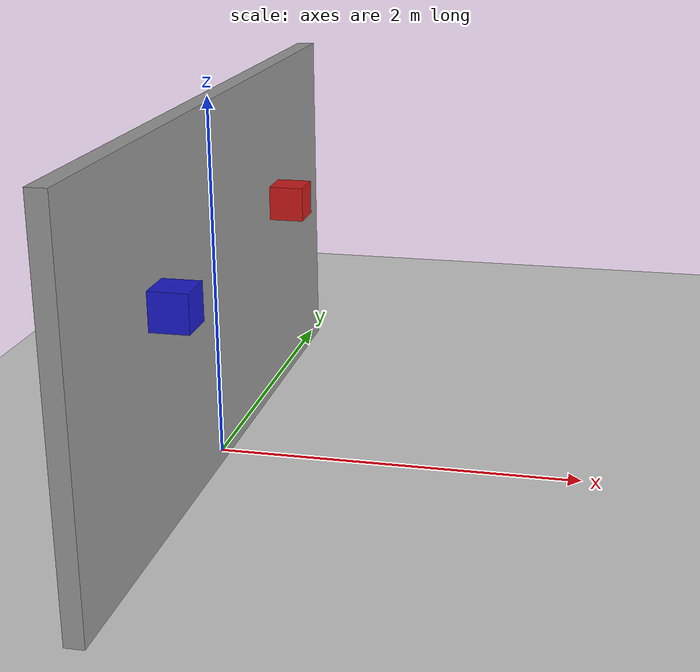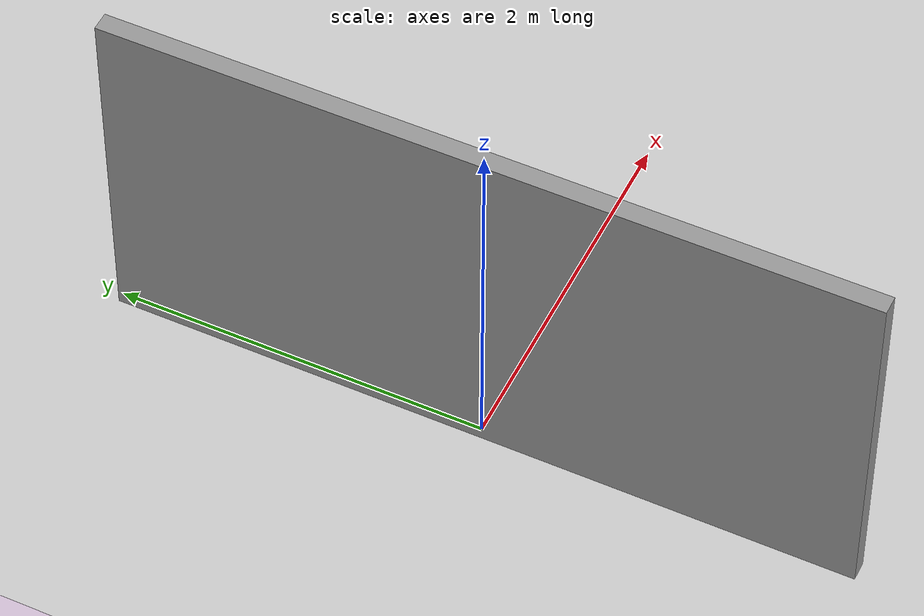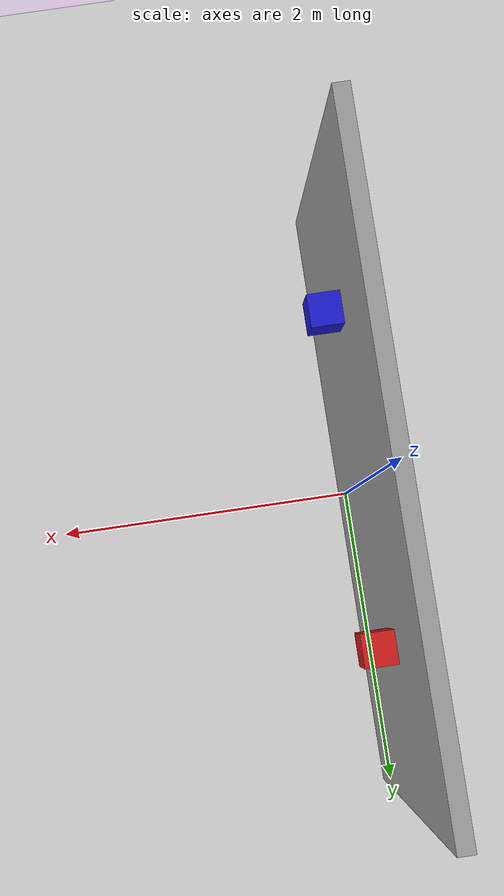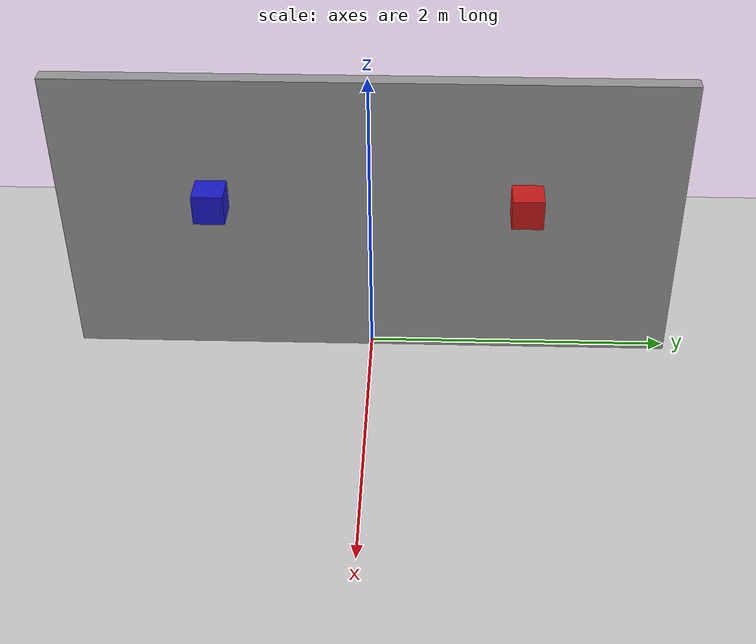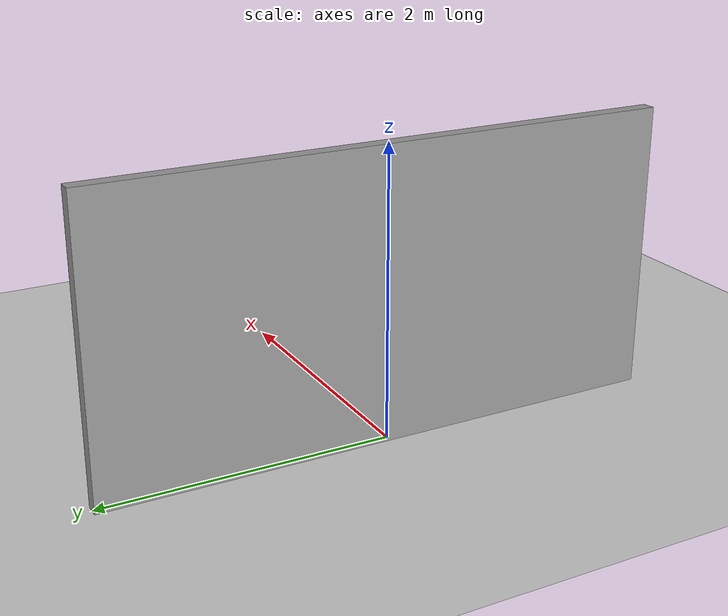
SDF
<?xml version="1.0" ?>
<sdf version="1.6">
  <world name="default">
    <!-- Modelli di base -->
    <include>
      <uri>model://ground_plane</uri>
    </include>
    <include>
      <uri>model://sun</uri>
    </include>

    <!-- Muro Verticale: dimensione (spessore x larghezza x altezza) 0.1 x 4 x 2, centrato in (0,0,1) -->
    <model name="wall">
      <static>true</static>
      <link name="wall_link">
        <pose>0 0 1 0 0 0</pose>
        <collision name="collision">
          <geometry>
            <box>
              <size>0.1 4 2</size>
            </box>
          </geometry>
        </collision>
        <visual name="visual">
          <geometry>
            <box>
              <size>0.1 4 2</size>
            </box>
          </geometry>
          <material>
            <script>
              <uri>file://media/materials/scripts/gazebo.material</uri>
              <name>Gazebo/Grey</name>
            </script>
          </material>
        </visual>
      </link>
    </model>

    <!-- Camera 1: modello a forma di box con sensore fish‑eye, attaccata al muro -->
    <model name="camera1">
      <static>true</static>
      <link name="camera_link">
        <pose>0.15 -1 1.2 0 0 0</pose>
        <!-- Definizione del box fisico per la telecamera -->
        <collision name="collision">
          <geometry>
            <box>
              <size>0.2 0.2 0.2</size>
            </box>
          </geometry>
        </collision>
        <visual name="visual">
          <geometry>
            <box>
              <size>0.2 0.2 0.2</size>
            </box>
          </geometry>
          <material>
            <ambient>0.1 0.1 0.8 1</ambient>
            <diffuse>0.1 0.1 0.8 1</diffuse>
          </material>
        </visual>
        <!-- Sensore camera con effetto fish‑eye -->
        <sensor name="camera_sensor1" type="camera">
          <update_rate>30</update_rate>
          <camera>
            <!-- Campo visivo aumentato per effetto fish‑eye -->
            <horizontal_fov>2.5</horizontal_fov>
            <image>
              <width>800</width>
              <height>600</height>
              <format>R8G8B8</format>
            </image>
            <clip>
              <near>0.1</near>
              <far>100</far>
            </clip>
            <!-- Parametri di distorsione -->
            <distortion>
              <k1>-0.3</k1>
              <k2>0.1</k2>
              <p1>0</p1>
              <p2>0</p2>
            </distortion>
          </camera>
          <plugin name="camera_plugin" filename="libcamera_plugin.so"/>
        </sensor>
      </link>
    </model>

    <!-- Camera 2: modello a forma di box con sensore fish‑eye, attaccata al muro -->
    <model name="camera2">
      <static>true</static>
      <link name="camera_link">
        <!-- Posizionata simmetricamente rispetto alla Camera 1 sul muro:
             x = -0.15,
             y = 1,
             z = 1.2 -->
        <pose>0.15 1 1.2 0 0 0</pose>
        <collision name="collision">
          <geometry>
            <box>
              <size>0.2 0.2 0.2</size>
            </box>
          </geometry>
        </collision>
        <visual name="visual">
          <geometry>
            <box>
              <size>0.2 0.2 0.2</size>
            </box>
          </geometry>
          <material>
            <ambient>0.8 0.1 0.1 1</ambient>
            <diffuse>0.8 0.1 0.1 1</diffuse>
          </material>
        </visual>
        <!-- Sensore camera fish‑eye -->
        <sensor name="camera_sensor2" type="camera">
          <update_rate>30</update_rate>
          <camera>
            <horizontal_fov>2.5</horizontal_fov>
            <image>
              <width>800</width>
              <height>600</height>
              <format>R8G8B8</format>
            </image>
            <clip>
              <near>0.1</near>
              <far>100</far>
            </clip>
            <distortion>
              <k1>-0.3</k1>
              <k2>0.1</k2>
              <p1>0</p1>
              <p2>0</p2>
            </distortion>
          </camera>
          <plugin name="camera_plugin" filename="libcamera_plugin.so"/>
        </sensor>
      </link>
    </model>

  </world>
</sdf>
